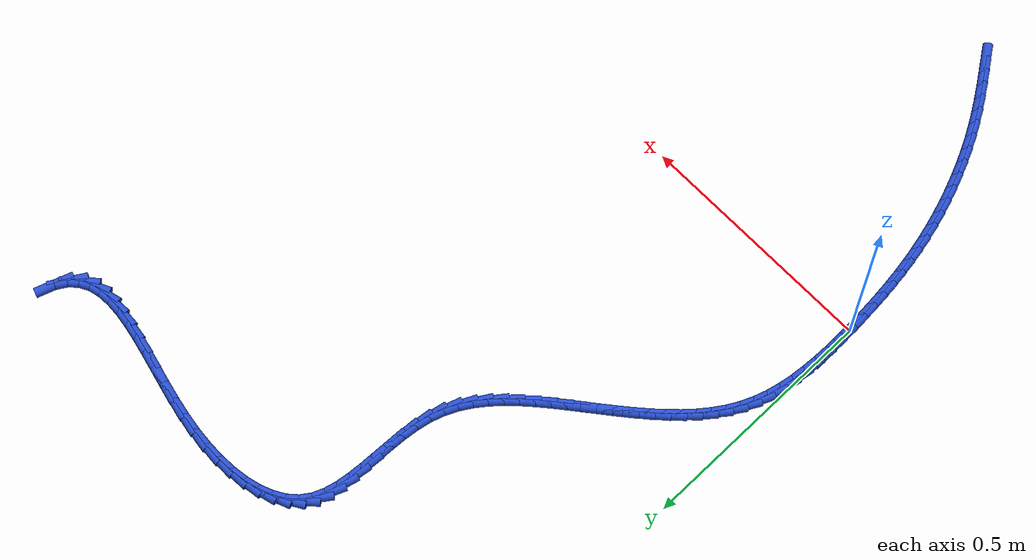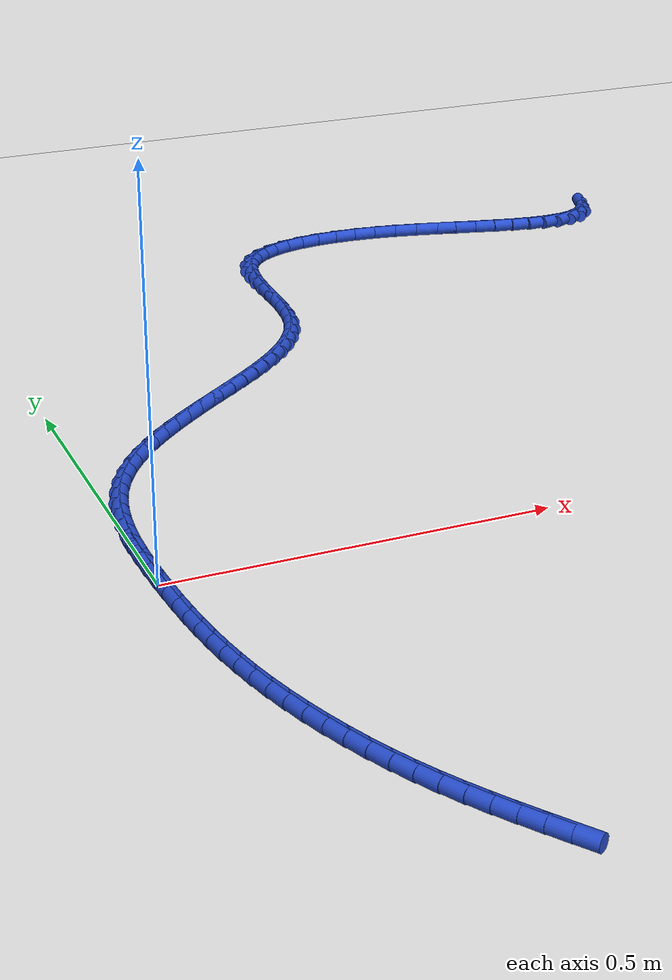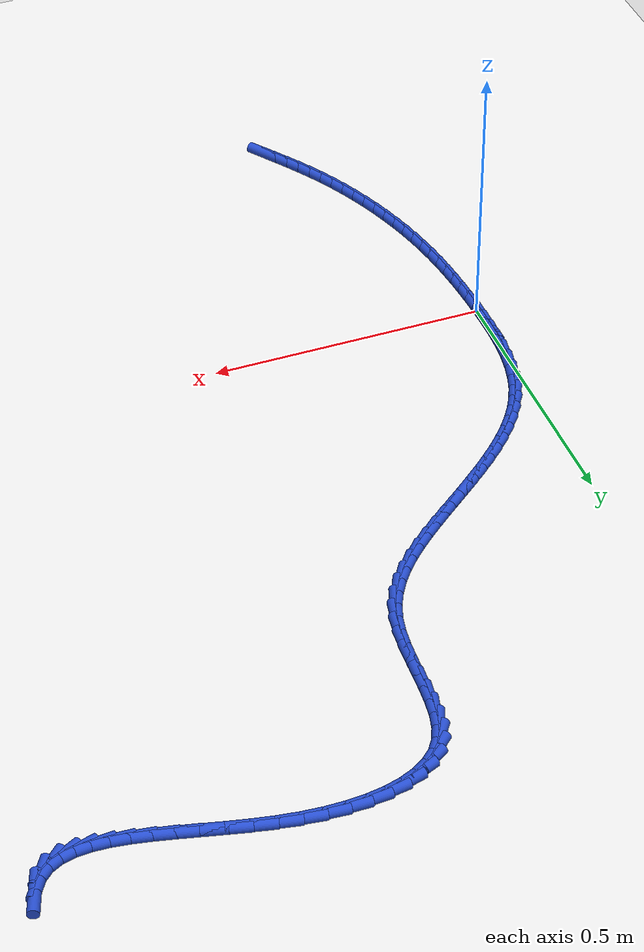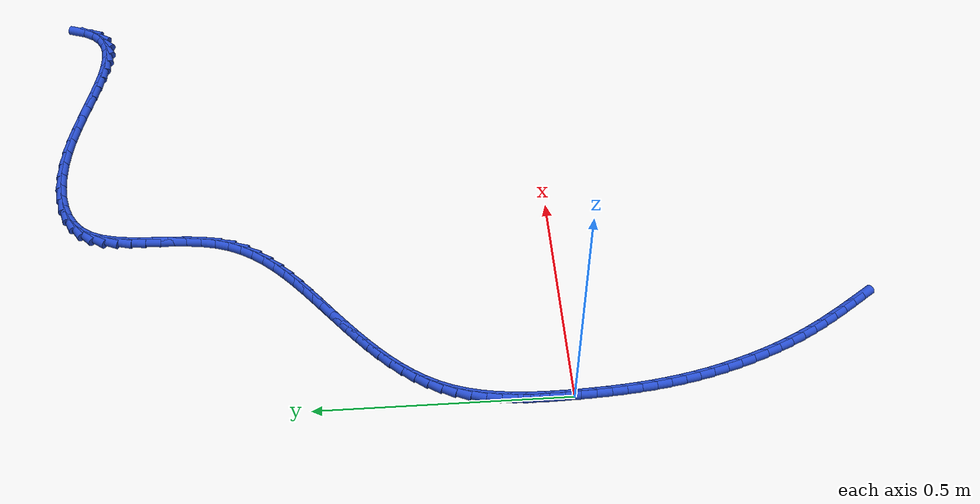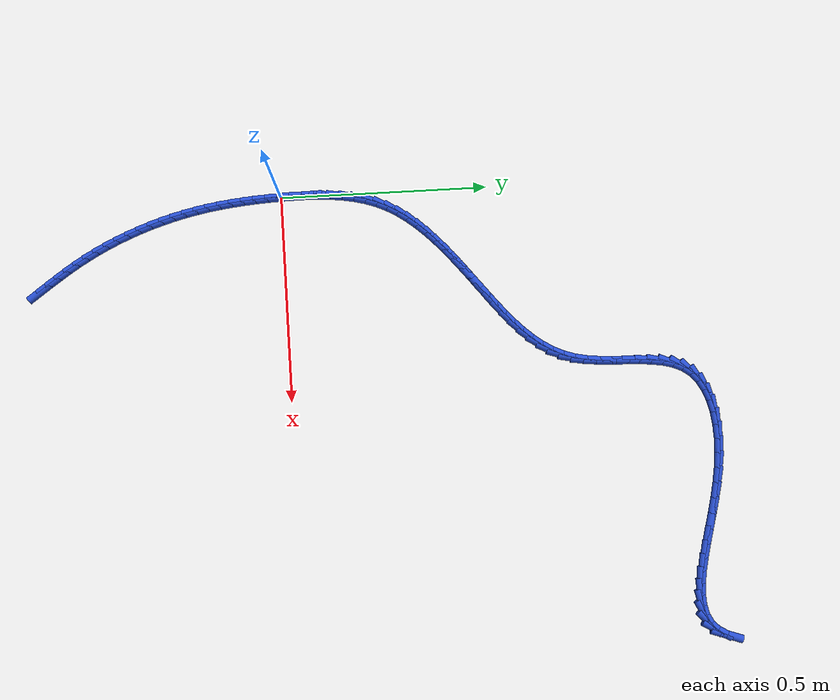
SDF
<sdf version="1.6">
 <world name="default">
  <model name="ground_plane">
   <static>1</static>
   <link name="link">
    <collision name="collision">
     <geometry><plane><normal>0 0 1</normal><size>100 100</size></plane></geometry>
     <surface><friction><ode><mu>100</mu><mu2>50</mu2></ode></friction></surface>
    </collision>
    <visual name="visual">
     <cast_shadows>0</cast_shadows>
     <geometry><plane><normal>0 0 1</normal><size>100 100</size></plane></geometry>
     <material>
      <script><uri>file://media/materials/scripts/gazebo.material</uri><name>Gazebo/WhiteGlow</name></script>
     </material>
    </visual>
   </link>
  </model>
  <model name="line">
   <link name="link_0">
    <pose>-1.1872013788716274e-17 2.0816681711721685e-17 0.01 0 1.57 -1.5451109101170222</pose>
    <collision name="collision">
     <geometry><cylinder><radius>0.01</radius><length>0.08</length></cylinder></geometry>
    </collision>
    <visual name="visual">
     <material>
      <script><name>Gazebo/Blue</name><uri>file://media/materials/scripts/gazebo.material</uri></script>
     </material>
     <geometry><cylinder><radius>0.01</radius><length>0.08</length></cylinder></geometry>
    </visual>
   </link>
   <link name="link_1">
    <pose>-0.0007698900590970052 0.02996722817668123 0.01 0 1.57 -1.5673495071454218</pose>
    <collision name="collision">
     <geometry><cylinder><radius>0.01</radius><length>0.08</length></cylinder></geometry>
    </collision>
    <visual name="visual">
     <material>
      <script><name>Gazebo/Blue</name><uri>file://media/materials/scripts/gazebo.material</uri></script>
     </material>
     <geometry><cylinder><radius>0.01</radius><length>0.08</length></cylinder></geometry>
    </visual>
   </link>
   <link name="link_2">
    <pose>-0.0008736150124650972 0.060060053779899154 0.01 0 1.57 1.5438950808368137</pose>
    <collision name="collision">
     <geometry><cylinder><radius>0.01</radius><length>0.08</length></cylinder></geometry>
    </collision>
    <visual name="visual">
     <material>
      <script><name>Gazebo/Blue</name><uri>file://media/materials/scripts/gazebo.material</uri></script>
     </material>
     <geometry><cylinder><radius>0.01</radius><length>0.08</length></cylinder></geometry>
    </visual>
   </link>
   <link name="link_3">
    <pose>-6.574774106356956e-05 0.09008365881764162 0.01 0 1.57 1.5048666415744176</pose>
    <collision name="collision">
     <geometry><cylinder><radius>0.01</radius><length>0.08</length></cylinder></geometry>
    </collision>
    <visual name="visual">
     <material>
      <script><name>Gazebo/Blue</name><uri>file://media/materials/scripts/gazebo.material</uri></script>
     </material>
     <geometry><cylinder><radius>0.01</radius><length>0.08</length></cylinder></geometry>
    </visual>
   </link>
   <link name="link_4">
    <pose>0.001899138874148295 0.11984322529789647 0.01 0 1.57 1.45637503997327</pose>
    <collision name="collision">
     <geometry><cylinder><radius>0.01</radius><length>0.08</length></cylinder></geometry>
    </collision>
    <visual name="visual">
     <material>
      <script><name>Gazebo/Blue</name><uri>file://media/materials/scripts/gazebo.material</uri></script>
     </material>
     <geometry><cylinder><radius>0.01</radius><length>0.08</length></cylinder></geometry>
    </visual>
   </link>
   <link name="link_5">
    <pose>0.005266471952211213 0.1491439352286515 0.01 0 1.57 1.3974837513793676</pose>
    <collision name="collision">
     <geometry><cylinder><radius>0.01</radius><length>0.08</length></cylinder></geometry>
    </collision>
    <visual name="visual">
     <material>
      <script><name>Gazebo/Blue</name><uri>file://media/materials/scripts/gazebo.material</uri></script>
     </material>
     <geometry><cylinder><radius>0.01</radius><length>0.08</length></cylinder></geometry>
    </visual>
   </link>
   <link name="link_6">
    <pose>0.0102816786121659 0.17779097061789453 0.01 0 1.57 1.3272106321210706</pose>
    <collision name="collision">
     <geometry><cylinder><radius>0.01</radius><length>0.08</length></cylinder></geometry>
    </collision>
    <visual name="visual">
     <material>
      <script><name>Gazebo/Blue</name><uri>file://media/materials/scripts/gazebo.material</uri></script>
     </material>
     <geometry><cylinder><radius>0.01</radius><length>0.08</length></cylinder></geometry>
    </visual>
   </link>
   <link name="link_7">
    <pose>0.01719018597305308 0.20558951347361348 0.01 0 1.57 1.2447186185263812</pose>
    <collision name="collision">
     <geometry><cylinder><radius>0.01</radius><length>0.08</length></cylinder></geometry>
    </collision>
    <visual name="visual">
     <material>
      <script><name>Gazebo/Blue</name><uri>file://media/materials/scripts/gazebo.material</uri></script>
     </material>
     <geometry><cylinder><radius>0.01</radius><length>0.08</length></cylinder></geometry>
    </visual>
   </link>
   <link name="link_8">
    <pose>0.026237421153913462 0.23234474580379605 0.01 0 1.57 1.1509238718050745</pose>
    <collision name="collision">
     <geometry><cylinder><radius>0.01</radius><length>0.08</length></cylinder></geometry>
    </collision>
    <visual name="visual">
     <material>
      <script><name>Gazebo/Blue</name><uri>file://media/materials/scripts/gazebo.material</uri></script>
     </material>
     <geometry><cylinder><radius>0.01</radius><length>0.08</length></cylinder></geometry>
    </visual>
   </link>
   <link name="link_9">
    <pose>0.03763806938680644 0.2578827125401909 0.01 0 1.57 1.0586166648460742</pose>
    <collision name="collision">
     <geometry><cylinder><radius>0.01</radius><length>0.08</length></cylinder></geometry>
    </collision>
    <visual name="visual">
     <material>
      <script><name>Gazebo/Blue</name><uri>file://media/materials/scripts/gazebo.material</uri></script>
     </material>
     <geometry><cylinder><radius>0.01</radius><length>0.08</length></cylinder></geometry>
    </visual>
   </link>
   <link name="link_10">
    <pose>0.051322447408647644 0.2822224447587526 0.01 0 1.57 0.9758450162834615</pose>
    <collision name="collision">
     <geometry><cylinder><radius>0.01</radius><length>0.08</length></cylinder></geometry>
    </collision>
    <visual name="visual">
     <material>
      <script><name>Gazebo/Blue</name><uri>file://media/materials/scripts/gazebo.material</uri></script>
     </material>
     <geometry><cylinder><radius>0.01</radius><length>0.08</length></cylinder></geometry>
    </visual>
   </link>
   <link name="link_11">
    <pose>0.06706701228580245 0.30548739011137616 0.01 0 1.57 0.9035324256831487</pose>
    <collision name="collision">
     <geometry><cylinder><radius>0.01</radius><length>0.08</length></cylinder></geometry>
    </collision>
    <visual name="visual">
     <material>
      <script><name>Gazebo/Blue</name><uri>file://media/materials/scripts/gazebo.material</uri></script>
     </material>
     <geometry><cylinder><radius>0.01</radius><length>0.08</length></cylinder></geometry>
    </visual>
   </link>
   <link name="link_12">
    <pose>0.08464670987519629 0.3278020218294001 0.01 0 1.57 0.841854725073762</pose>
    <collision name="collision">
     <geometry><cylinder><radius>0.01</radius><length>0.08</length></cylinder></geometry>
    </collision>
    <visual name="visual">
     <material>
      <script><name>Gazebo/Blue</name><uri>file://media/materials/scripts/gazebo.material</uri></script>
     </material>
     <geometry><cylinder><radius>0.01</radius><length>0.08</length></cylinder></geometry>
    </visual>
   </link>
   <link name="link_13">
    <pose>0.10383648603375471 0.34929081314416266 0.01 0 1.57 0.7905386433102758</pose>
    <collision name="collision">
     <geometry><cylinder><radius>0.01</radius><length>0.08</length></cylinder></geometry>
    </collision>
    <visual name="visual">
     <material>
      <script><name>Gazebo/Blue</name><uri>file://media/materials/scripts/gazebo.material</uri></script>
     </material>
     <geometry><cylinder><radius>0.01</radius><length>0.08</length></cylinder></geometry>
    </visual>
   </link>
   <link name="link_14">
    <pose>0.12441128661840307 0.37007823728700195 0.01 0 1.57 0.7490753755160869</pose>
    <collision name="collision">
     <geometry><cylinder><radius>0.01</radius><length>0.08</length></cylinder></geometry>
    </collision>
    <visual name="visual">
     <material>
      <script><name>Gazebo/Blue</name><uri>file://media/materials/scripts/gazebo.material</uri></script>
     </material>
     <geometry><cylinder><radius>0.01</radius><length>0.08</length></cylinder></geometry>
    </visual>
   </link>
   <link name="link_15">
    <pose>0.14614605748606693 0.39028876748925656 0.01 0 1.57 0.7168812915747746</pose>
    <collision name="collision">
     <geometry><cylinder><radius>0.01</radius><length>0.08</length></cylinder></geometry>
    </collision>
    <visual name="visual">
     <material>
      <script><name>Gazebo/Blue</name><uri>file://media/materials/scripts/gazebo.material</uri></script>
     </material>
     <geometry><cylinder><radius>0.01</radius><length>0.08</length></cylinder></geometry>
    </visual>
   </link>
   <link name="link_16">
    <pose>0.16881574449367168 0.41004687698226455 0.01 0 1.57 0.6934040923392459</pose>
    <collision name="collision">
     <geometry><cylinder><radius>0.01</radius><length>0.08</length></cylinder></geometry>
    </collision>
    <visual name="visual">
     <material>
      <script><name>Gazebo/Blue</name><uri>file://media/materials/scripts/gazebo.material</uri></script>
     </material>
     <geometry><cylinder><radius>0.01</radius><length>0.08</length></cylinder></geometry>
    </visual>
   </link>
   <link name="link_17">
    <pose>0.1921952934981428 0.42947703899736434 0.01 0 1.57 0.6781859495157794</pose>
    <collision name="collision">
     <geometry><cylinder><radius>0.01</radius><length>0.08</length></cylinder></geometry>
    </collision>
    <visual name="visual">
     <material>
      <script><name>Gazebo/Blue</name><uri>file://media/materials/scripts/gazebo.material</uri></script>
     </material>
     <geometry><cylinder><radius>0.01</radius><length>0.08</length></cylinder></geometry>
    </visual>
   </link>
   <link name="link_18">
    <pose>0.21605965035640579 0.44870372676589415 0.01 0 1.57 0.6708973248589045</pose>
    <collision name="collision">
     <geometry><cylinder><radius>0.01</radius><length>0.08</length></cylinder></geometry>
    </collision>
    <visual name="visual">
     <material>
      <script><name>Gazebo/Blue</name><uri>file://media/materials/scripts/gazebo.material</uri></script>
     </material>
     <geometry><cylinder><radius>0.01</radius><length>0.08</length></cylinder></geometry>
    </visual>
   </link>
   <link name="link_19">
    <pose>0.24018376092538607 0.4678514135191925 0.01 0 1.57 0.6713525008368391</pose>
    <collision name="collision">
     <geometry><cylinder><radius>0.01</radius><length>0.08</length></cylinder></geometry>
    </collision>
    <visual name="visual">
     <material>
      <script><name>Gazebo/Blue</name><uri>file://media/materials/scripts/gazebo.material</uri></script>
     </material>
     <geometry><cylinder><radius>0.01</radius><length>0.08</length></cylinder></geometry>
    </visual>
   </link>
   <link name="link_20">
    <pose>0.26434257106200904 0.4870445724885972 0.01 0 1.57 0.6798132465846809</pose>
    <collision name="collision">
     <geometry><cylinder><radius>0.01</radius><length>0.08</length></cylinder></geometry>
    </collision>
    <visual name="visual">
     <material>
      <script><name>Gazebo/Blue</name><uri>file://media/materials/scripts/gazebo.material</uri></script>
     </material>
     <geometry><cylinder><radius>0.01</radius><length>0.08</length></cylinder></geometry>
    </visual>
   </link>
   <link name="link_21">
    <pose>0.28830198507840205 0.5064122257639235 0.01 0 1.57 0.6994442417516715</pose>
    <collision name="collision">
     <geometry><cylinder><radius>0.01</radius><length>0.08</length></cylinder></geometry>
    </collision>
    <visual name="visual">
     <material>
      <script><name>Gazebo/Blue</name><uri>file://media/materials/scripts/gazebo.material</uri></script>
     </material>
     <geometry><cylinder><radius>0.01</radius><length>0.08</length></cylinder></geometry>
    </visual>
   </link>
   <link name="link_22">
    <pose>0.31173708832156377 0.5261290870317821 0.01 0 1.57 0.7324984477223815</pose>
    <collision name="collision">
     <geometry><cylinder><radius>0.01</radius><length>0.08</length></cylinder></geometry>
    </collision>
    <visual name="visual">
     <material>
      <script><name>Gazebo/Blue</name><uri>file://media/materials/scripts/gazebo.material</uri></script>
     </material>
     <geometry><cylinder><radius>0.01</radius><length>0.08</length></cylinder></geometry>
    </visual>
   </link>
   <link name="link_23">
    <pose>0.3342705140392098 0.5463962589622757 0.01 0 1.57 0.7798428348184872</pose>
    <collision name="collision">
     <geometry><cylinder><radius>0.01</radius><length>0.08</length></cylinder></geometry>
    </collision>
    <visual name="visual">
     <material>
      <script><name>Gazebo/Blue</name><uri>file://media/materials/scripts/gazebo.material</uri></script>
     </material>
     <geometry><cylinder><radius>0.01</radius><length>0.08</length></cylinder></geometry>
    </visual>
   </link>
   <link name="link_24">
    <pose>0.3555242599318217 0.5674151639733479 0.01 0 1.57 0.8424951398362368</pose>
    <collision name="collision">
     <geometry><cylinder><radius>0.01</radius><length>0.08</length></cylinder></geometry>
    </collision>
    <visual name="visual">
     <material>
      <script><name>Gazebo/Blue</name><uri>file://media/materials/scripts/gazebo.material</uri></script>
     </material>
     <geometry><cylinder><radius>0.01</radius><length>0.08</length></cylinder></geometry>
    </visual>
   </link>
   <link name="link_25">
    <pose>0.37512032369988113 0.5893872244829423 0.01 0 1.57 0.921360885873998</pose>
    <collision name="collision">
     <geometry><cylinder><radius>0.01</radius><length>0.08</length></cylinder></geometry>
    </collision>
    <visual name="visual">
     <material>
      <script><name>Gazebo/Blue</name><uri>file://media/materials/scripts/gazebo.material</uri></script>
     </material>
     <geometry><cylinder><radius>0.01</radius><length>0.08</length></cylinder></geometry>
    </visual>
   </link>
   <link name="link_26">
    <pose>0.3926807030438695 0.6125138629090023 0.01 0 1.57 1.0167613303036338</pose>
    <collision name="collision">
     <geometry><cylinder><radius>0.01</radius><length>0.08</length></cylinder></geometry>
    </collision>
    <visual name="visual">
     <material>
      <script><name>Gazebo/Blue</name><uri>file://media/materials/scripts/gazebo.material</uri></script>
     </material>
     <geometry><cylinder><radius>0.01</radius><length>0.08</length></cylinder></geometry>
    </visual>
   </link>
   <link name="link_27">
    <pose>0.4078273956642686 0.6369965016694712 0.01 0 1.57 1.127787545279394</pose>
    <collision name="collision">
     <geometry><cylinder><radius>0.01</radius><length>0.08</length></cylinder></geometry>
    </collision>
    <visual name="visual">
     <material>
      <script><name>Gazebo/Blue</name><uri>file://media/materials/scripts/gazebo.material</uri></script>
     </material>
     <geometry><cylinder><radius>0.01</radius><length>0.08</length></cylinder></geometry>
    </visual>
   </link>
   <link name="link_28">
    <pose>0.4201823992615598 0.6630365631822922 0.01 0 1.57 1.2515728648714242</pose>
    <collision name="collision">
     <geometry><cylinder><radius>0.01</radius><length>0.08</length></cylinder></geometry>
    </collision>
    <visual name="visual">
     <material>
      <script><name>Gazebo/Blue</name><uri>file://media/materials/scripts/gazebo.material</uri></script>
     </material>
     <geometry><cylinder><radius>0.01</radius><length>0.08</length></cylinder></geometry>
    </visual>
   </link>
   <link name="link_29">
    <pose>0.42937019553111067 0.6908339102998016 0.01 0 1.57 1.3698600469503874</pose>
    <collision name="collision">
     <geometry><cylinder><radius>0.01</radius><length>0.08</length></cylinder></geometry>
    </collision>
    <visual name="visual">
     <material>
      <script><name>Gazebo/Blue</name><uri>file://media/materials/scripts/gazebo.material</uri></script>
     </material>
     <geometry><cylinder><radius>0.01</radius><length>0.08</length></cylinder></geometry>
    </visual>
   </link>
   <link name="link_30">
    <pose>0.4353836315976691 0.7203571292086329 0.01 0 1.57 1.4546445446378071</pose>
    <collision name="collision">
     <geometry><cylinder><radius>0.01</radius><length>0.08</length></cylinder></geometry>
    </collision>
    <visual name="visual">
     <material>
      <script><name>Gazebo/Blue</name><uri>file://media/materials/scripts/gazebo.material</uri></script>
     </material>
     <geometry><cylinder><radius>0.01</radius><length>0.08</length></cylinder></geometry>
    </visual>
   </link>
   <link name="link_31">
    <pose>0.43897069717066817 0.7511006930403253 0.01 0 1.57 1.5071485653790522</pose>
    <collision name="collision">
     <geometry><cylinder><radius>0.01</radius><length>0.08</length></cylinder></geometry>
    </collision>
    <visual name="visual">
     <material>
      <script><name>Gazebo/Blue</name><uri>file://media/materials/scripts/gazebo.material</uri></script>
     </material>
     <geometry><cylinder><radius>0.01</radius><length>0.08</length></cylinder></geometry>
    </visual>
   </link>
   <link name="link_32">
    <pose>0.440971956508509 0.7825009523901908 0.01 0 1.57 1.5309354088474274</pose>
    <collision name="collision">
     <geometry><cylinder><radius>0.01</radius><length>0.08</length></cylinder></geometry>
    </collision>
    <visual name="visual">
     <material>
      <script><name>Gazebo/Blue</name><uri>file://media/materials/scripts/gazebo.material</uri></script>
     </material>
     <geometry><cylinder><radius>0.01</radius><length>0.08</length></cylinder></geometry>
    </visual>
   </link>
   <link name="link_33">
    <pose>0.4422279738695924 0.8139942578535415 0.01 0 1.57 1.5272641448382829</pose>
    <collision name="collision">
     <geometry><cylinder><radius>0.01</radius><length>0.08</length></cylinder></geometry>
    </collision>
    <visual name="visual">
     <material>
      <script><name>Gazebo/Blue</name><uri>file://media/materials/scripts/gazebo.material</uri></script>
     </material>
     <geometry><cylinder><radius>0.01</radius><length>0.08</length></cylinder></geometry>
    </visual>
   </link>
   <link name="link_34">
    <pose>0.4435793135123191 0.8450169600256893 0.01 0 1.57 1.4946734663981884</pose>
    <collision name="collision">
     <geometry><cylinder><radius>0.01</radius><length>0.08</length></cylinder></geometry>
    </collision>
    <visual name="visual">
     <material>
      <script><name>Gazebo/Blue</name><uri>file://media/materials/scripts/gazebo.material</uri></script>
     </material>
     <geometry><cylinder><radius>0.01</radius><length>0.08</length></cylinder></geometry>
    </visual>
   </link>
   <link name="link_35">
    <pose>0.44586653969509 0.8750054095019463 0.01 0 1.57 1.4286271214535384</pose>
    <collision name="collision">
     <geometry><cylinder><radius>0.01</radius><length>0.08</length></cylinder></geometry>
    </collision>
    <visual name="visual">
     <material>
      <script><name>Gazebo/Blue</name><uri>file://media/materials/scripts/gazebo.material</uri></script>
     </material>
     <geometry><cylinder><radius>0.01</radius><length>0.08</length></cylinder></geometry>
    </visual>
   </link>
   <link name="link_36">
    <pose>0.4499302166763056 0.9033959568776234 0.01 0 1.57 1.3213930779234753</pose>
    <collision name="collision">
     <geometry><cylinder><radius>0.01</radius><length>0.08</length></cylinder></geometry>
    </collision>
    <visual name="visual">
     <material>
      <script><name>Gazebo/Blue</name><uri>file://media/materials/scripts/gazebo.material</uri></script>
     </material>
     <geometry><cylinder><radius>0.01</radius><length>0.08</length></cylinder></geometry>
    </visual>
   </link>
   <link name="link_37">
    <pose>0.45661090871436694 0.9296249527480335 0.01 0 1.57 1.1635627403228734</pose>
    <collision name="collision">
     <geometry><cylinder><radius>0.01</radius><length>0.08</length></cylinder></geometry>
    </collision>
    <visual name="visual">
     <material>
      <script><name>Gazebo/Blue</name><uri>file://media/materials/scripts/gazebo.material</uri></script>
     </material>
     <geometry><cylinder><radius>0.01</radius><length>0.08</length></cylinder></geometry>
    </visual>
   </link>
   <link name="link_38">
    <pose>0.46674918006767485 0.9531287477084887 0.01 0 1.57 0.9526135646859881</pose>
    <collision name="collision">
     <geometry><cylinder><radius>0.01</radius><length>0.08</length></cylinder></geometry>
    </collision>
    <visual name="visual">
     <material>
      <script><name>Gazebo/Blue</name><uri>file://media/materials/scripts/gazebo.material</uri></script>
     </material>
     <geometry><cylinder><radius>0.01</radius><length>0.08</length></cylinder></geometry>
    </visual>
   </link>
   <link name="link_39">
    <pose>0.4811420381584736 0.9733670530089876 0.01 0 1.57 0.7309356425136097</pose>
    <collision name="collision">
     <geometry><cylinder><radius>0.01</radius><length>0.08</length></cylinder></geometry>
    </collision>
    <visual name="visual">
     <material>
      <script><name>Gazebo/Blue</name><uri>file://media/materials/scripts/gazebo.material</uri></script>
     </material>
     <geometry><cylinder><radius>0.01</radius><length>0.08</length></cylinder></geometry>
    </visual>
   </link>
   <link name="link_40">
    <pose>0.49988761090628964 0.9901744070029517 0.01 0 1.57 0.5382414222113716</pose>
    <collision name="collision">
     <geometry><cylinder><radius>0.01</radius><length>0.08</length></cylinder></geometry>
    </collision>
    <visual name="visual">
     <material>
      <script><name>Gazebo/Blue</name><uri>file://media/materials/scripts/gazebo.material</uri></script>
     </material>
     <geometry><cylinder><radius>0.01</radius><length>0.08</length></cylinder></geometry>
    </visual>
   </link>
   <link name="link_41">
    <pose>0.5225208499953237 1.0036873939847466 0.01 0 1.57 0.3787790663361529</pose>
    <collision name="collision">
     <geometry><cylinder><radius>0.01</radius><length>0.08</length></cylinder></geometry>
    </collision>
    <visual name="visual">
     <material>
      <script><name>Gazebo/Blue</name><uri>file://media/materials/scripts/gazebo.material</uri></script>
     </material>
     <geometry><cylinder><radius>0.01</radius><length>0.08</length></cylinder></geometry>
    </visual>
   </link>
   <link name="link_42">
    <pose>0.5485606880715946 1.0140511896720912 0.01 0 1.57 0.24882336007840214</pose>
    <collision name="collision">
     <geometry><cylinder><radius>0.01</radius><length>0.08</length></cylinder></geometry>
    </collision>
    <visual name="visual">
     <material>
      <script><name>Gazebo/Blue</name><uri>file://media/materials/scripts/gazebo.material</uri></script>
     </material>
     <geometry><cylinder><radius>0.01</radius><length>0.08</length></cylinder></geometry>
    </visual>
   </link>
   <link name="link_43">
    <pose>0.5775260577811204 1.0214109697827043 0.01 0 1.57 0.14232825245619285</pose>
    <collision name="collision">
     <geometry><cylinder><radius>0.01</radius><length>0.08</length></cylinder></geometry>
    </collision>
    <visual name="visual">
     <material>
      <script><name>Gazebo/Blue</name><uri>file://media/materials/scripts/gazebo.material</uri></script>
     </material>
     <geometry><cylinder><radius>0.01</radius><length>0.08</length></cylinder></geometry>
    </visual>
   </link>
   <link name="link_44">
    <pose>0.6089358917699195 1.0259119100343048 0.01 0 1.57 0.0535030720630858</pose>
    <collision name="collision">
     <geometry><cylinder><radius>0.01</radius><length>0.08</length></cylinder></geometry>
    </collision>
    <visual name="visual">
     <material>
      <script><name>Gazebo/Blue</name><uri>file://media/materials/scripts/gazebo.material</uri></script>
     </material>
     <geometry><cylinder><radius>0.01</radius><length>0.08</length></cylinder></geometry>
    </visual>
   </link>
   <link name="link_45">
    <pose>0.6423091226840105 1.0276991861446123 0.01 0 1.57 -0.02240909431755699</pose>
    <collision name="collision">
     <geometry><cylinder><radius>0.01</radius><length>0.08</length></cylinder></geometry>
    </collision>
    <visual name="visual">
     <material>
      <script><name>Gazebo/Blue</name><uri>file://media/materials/scripts/gazebo.material</uri></script>
     </material>
     <geometry><cylinder><radius>0.01</radius><length>0.08</length></cylinder></geometry>
    </visual>
   </link>
   <link name="link_46">
    <pose>0.677164683169412 1.0269179738313454 0.01 0 1.57 -0.08913322253763291</pose>
    <collision name="collision">
     <geometry><cylinder><radius>0.01</radius><length>0.08</length></cylinder></geometry>
    </collision>
    <visual name="visual">
     <material>
      <script><name>Gazebo/Blue</name><uri>file://media/materials/scripts/gazebo.material</uri></script>
     </material>
     <geometry><cylinder><radius>0.01</radius><length>0.08</length></cylinder></geometry>
    </visual>
   </link>
   <link name="link_47">
    <pose>0.7130215058721426 1.023713448812224 0.01 0 1.57 -0.14889320953594515</pose>
    <collision name="collision">
     <geometry><cylinder><radius>0.01</radius><length>0.08</length></cylinder></geometry>
    </collision>
    <visual name="visual">
     <material>
      <script><name>Gazebo/Blue</name><uri>file://media/materials/scripts/gazebo.material</uri></script>
     </material>
     <geometry><cylinder><radius>0.01</radius><length>0.08</length></cylinder></geometry>
    </visual>
   </link>
   <link name="link_48">
    <pose>0.7494063517024228 1.018255600582526 0.01 0 1.57 -0.19597598391370843</pose>
    <collision name="collision">
     <geometry><cylinder><radius>0.01</radius><length>0.08</length></cylinder></geometry>
    </collision>
    <visual name="visual">
     <material>
      <script><name>Gazebo/Blue</name><uri>file://media/materials/scripts/gazebo.material</uri></script>
     </material>
     <geometry><cylinder><radius>0.01</radius><length>0.08</length></cylinder></geometry>
    </visual>
   </link>
   <link name="link_49">
    <pose>0.7859371371921492 1.0110033607658349 0.01 0 1.57 -0.22710652442872728</pose>
    <collision name="collision">
     <geometry><cylinder><radius>0.01</radius><length>0.08</length></cylinder></geometry>
    </collision>
    <visual name="visual">
     <material>
      <script><name>Gazebo/Blue</name><uri>file://media/materials/scripts/gazebo.material</uri></script>
     </material>
     <geometry><cylinder><radius>0.01</radius><length>0.08</length></cylinder></geometry>
    </visual>
   </link>
   <link name="link_50">
    <pose>0.8222906612316994 1.002602304372791 0.01 0 1.57 -0.24334169820185125</pose>
    <collision name="collision">
     <geometry><cylinder><radius>0.01</radius><length>0.08</length></cylinder></geometry>
    </collision>
    <visual name="visual">
     <material>
      <script><name>Gazebo/Blue</name><uri>file://media/materials/scripts/gazebo.material</uri></script>
     </material>
     <geometry><cylinder><radius>0.01</radius><length>0.08</length></cylinder></geometry>
    </visual>
   </link>
   <link name="link_51">
    <pose>0.8581447073365691 0.9937011274467502 0.01 0 1.57 -0.24483125765413086</pose>
    <collision name="collision">
     <geometry><cylinder><radius>0.01</radius><length>0.08</length></cylinder></geometry>
    </collision>
    <visual name="visual">
     <material>
      <script><name>Gazebo/Blue</name><uri>file://media/materials/scripts/gazebo.material</uri></script>
     </material>
     <geometry><cylinder><radius>0.01</radius><length>0.08</length></cylinder></geometry>
    </visual>
   </link>
   <link name="link_52">
    <pose>0.8931770590222533 0.9849485260310674 0.01 0 1.57 -0.23057554519354578</pose>
    <collision name="collision">
     <geometry><cylinder><radius>0.01</radius><length>0.08</length></cylinder></geometry>
    </collision>
    <visual name="visual">
     <material>
      <script><name>Gazebo/Blue</name><uri>file://media/materials/scripts/gazebo.material</uri></script>
     </material>
     <geometry><cylinder><radius>0.01</radius><length>0.08</length></cylinder></geometry>
    </visual>
   </link>
   <link name="link_53">
    <pose>0.927065499804249 0.9769931961690989 0.01 0 1.57 -0.19813388995301978</pose>
    <collision name="collision">
     <geometry><cylinder><radius>0.01</radius><length>0.08</length></cylinder></geometry>
    </collision>
    <visual name="visual">
     <material>
      <script><name>Gazebo/Blue</name><uri>file://media/materials/scripts/gazebo.material</uri></script>
     </material>
     <geometry><cylinder><radius>0.01</radius><length>0.08</length></cylinder></geometry>
    </visual>
   </link>
   <link name="link_54">
    <pose>0.9594878131980513 0.9704838339041993 0.01 0 1.57 -0.14312583075689134</pose>
    <collision name="collision">
     <geometry><cylinder><radius>0.01</radius><length>0.08</length></cylinder></geometry>
    </collision>
    <visual name="visual">
     <material>
      <script><name>Gazebo/Blue</name><uri>file://media/materials/scripts/gazebo.material</uri></script>
     </material>
     <geometry><cylinder><radius>0.01</radius><length>0.08</length></cylinder></geometry>
    </visual>
   </link>
   <link name="link_55">
    <pose>0.9901217827191567 0.966069135279725 0.01 0 1.57 -0.05852842001810809</pose>
    <collision name="collision">
     <geometry><cylinder><radius>0.01</radius><length>0.08</length></cylinder></geometry>
    </collision>
    <visual name="visual">
     <material>
      <script><name>Gazebo/Blue</name><uri>file://media/materials/scripts/gazebo.material</uri></script>
     </material>
     <geometry><cylinder><radius>0.01</radius><length>0.08</length></cylinder></geometry>
    </visual>
   </link>
   <link name="link_56">
    <pose>1.0186451918830601 0.964397796339031 0.01 0 1.57 0.06585614501446807</pose>
    <collision name="collision">
     <geometry><cylinder><radius>0.01</radius><length>0.08</length></cylinder></geometry>
    </collision>
    <visual name="visual">
     <material>
      <script><name>Gazebo/Blue</name><uri>file://media/materials/scripts/gazebo.material</uri></script>
     </material>
     <geometry><cylinder><radius>0.01</radius><length>0.08</length></cylinder></geometry>
    </visual>
   </link>
   <link name="link_57">
    <pose>1.0447358242052582 0.966118513125473 0.01 0 1.57 0.24205482684594376</pose>
    <collision name="collision">
     <geometry><cylinder><radius>0.01</radius><length>0.08</length></cylinder></geometry>
    </collision>
    <visual name="visual">
     <material>
      <script><name>Gazebo/Blue</name><uri>file://media/materials/scripts/gazebo.material</uri></script>
     </material>
     <geometry><cylinder><radius>0.01</radius><length>0.08</length></cylinder></geometry>
    </visual>
   </link>
   <link name="link_58">
    <pose>1.0680714632012465 0.9718799816824066 0.01 0 1.57 0.4762706710339979</pose>
    <collision name="collision">
     <geometry><cylinder><radius>0.01</radius><length>0.08</length></cylinder></geometry>
    </collision>
    <visual name="visual">
     <material>
      <script><name>Gazebo/Blue</name><uri>file://media/materials/scripts/gazebo.material</uri></script>
     </material>
     <geometry><cylinder><radius>0.01</radius><length>0.08</length></cylinder></geometry>
    </visual>
   </link>
   <link name="link_59">
    <pose>1.0883298923865208 0.9823308980531876 0.01 0 1.57 0.7526378779338351</pose>
    <collision name="collision">
     <geometry><cylinder><radius>0.01</radius><length>0.08</length></cylinder></geometry>
    </collision>
    <visual name="visual">
     <material>
      <script><name>Gazebo/Blue</name><uri>file://media/materials/scripts/gazebo.material</uri></script>
     </material>
     <geometry><cylinder><radius>0.01</radius><length>0.08</length></cylinder></geometry>
    </visual>
   </link>
   <link name="link_60">
    <pose>1.105188895276577 0.9981199582811707 0.01 0 1.57 1.0275307649152405</pose>
    <collision name="collision">
     <geometry><cylinder><radius>0.01</radius><length>0.08</length></cylinder></geometry>
    </collision>
    <visual name="visual">
     <material>
      <script><name>Gazebo/Blue</name><uri>file://media/materials/scripts/gazebo.material</uri></script>
     </material>
     <geometry><cylinder><radius>0.01</radius><length>0.08</length></cylinder></geometry>
    </visual>
   </link>
   <link name="link_61">
    <pose>1.118331832248215 1.019884209910793 0.01 0 1.57 1.2358446032262782</pose>
    <collision name="collision">
     <geometry><cylinder><radius>0.01</radius><length>0.08</length></cylinder></geometry>
    </collision>
    <visual name="visual">
     <material>
      <script><name>Gazebo/Blue</name><uri>file://media/materials/scripts/gazebo.material</uri></script>
     </material>
     <geometry><cylinder><radius>0.01</radius><length>0.08</length></cylinder></geometry>
    </visual>
   </link>
   <link name="link_238">
    <pose>0.19582120491027266 -0.5920673839120661 0.01 0 1.57 -0.9623430445203168</pose>
    <collision name="collision">
     <geometry><cylinder><radius>0.01</radius><length>0.08</length></cylinder></geometry>
    </collision>
    <visual name="visual">
     <material>
      <script><name>Gazebo/Blue</name><uri>file://media/materials/scripts/gazebo.material</uri></script>
     </material>
     <geometry><cylinder><radius>0.01</radius><length>0.08</length></cylinder></geometry>
    </visual>
   </link>
   <link name="link_239">
    <pose>0.1800968787149446 -0.5694950388147176 0.01 0 1.57 -0.9737396659355048</pose>
    <collision name="collision">
     <geometry><cylinder><radius>0.01</radius><length>0.08</length></cylinder></geometry>
    </collision>
    <visual name="visual">
     <material>
      <script><name>Gazebo/Blue</name><uri>file://media/materials/scripts/gazebo.material</uri></script>
     </material>
     <geometry><cylinder><radius>0.01</radius><length>0.08</length></cylinder></geometry>
    </visual>
   </link>
   <link name="link_240">
    <pose>0.16465509718313454 -0.5467806752662879 0.01 0 1.57 -0.9909896297377444</pose>
    <collision name="collision">
     <geometry><cylinder><radius>0.01</radius><length>0.08</length></cylinder></geometry>
    </collision>
    <visual name="visual">
     <material>
      <script><name>Gazebo/Blue</name><uri>file://media/materials/scripts/gazebo.material</uri></script>
     </material>
     <geometry><cylinder><radius>0.01</radius><length>0.08</length></cylinder></geometry>
    </visual>
   </link>
   <link name="link_241">
    <pose>0.14958048907483387 -0.5237622182404242 0.01 0 1.57 -1.013885497927441</pose>
    <collision name="collision">
     <geometry><cylinder><radius>0.01</radius><length>0.08</length></cylinder></geometry>
    </collision>
    <visual name="visual">
     <material>
      <script><name>Gazebo/Blue</name><uri>file://media/materials/scripts/gazebo.material</uri></script>
     </material>
     <geometry><cylinder><radius>0.01</radius><length>0.08</length></cylinder></geometry>
    </visual>
   </link>
   <link name="link_242">
    <pose>0.13495768315003412 -0.5002775927107744 0.01 0 1.57 -1.0420867177201227</pose>
    <collision name="collision">
     <geometry><cylinder><radius>0.01</radius><length>0.08</length></cylinder></geometry>
    </collision>
    <visual name="visual">
     <material>
      <script><name>Gazebo/Blue</name><uri>file://media/materials/scripts/gazebo.material</uri></script>
     </material>
     <geometry><cylinder><radius>0.01</radius><length>0.08</length></cylinder></geometry>
    </visual>
   </link>
   <link name="link_243">
    <pose>0.12087130816872661 -0.47616472365098605 0.01 0 1.57 -1.074963629406272</pose>
    <collision name="collision">
     <geometry><cylinder><radius>0.01</radius><length>0.08</length></cylinder></geometry>
    </collision>
    <visual name="visual">
     <material>
      <script><name>Gazebo/Blue</name><uri>file://media/materials/scripts/gazebo.material</uri></script>
     </material>
     <geometry><cylinder><radius>0.01</radius><length>0.08</length></cylinder></geometry>
    </visual>
   </link>
   <link name="link_244">
    <pose>0.10740477413560802 -0.45126836358181144 0.01 0 1.57 -1.1091385631461514</pose>
    <collision name="collision">
     <geometry><cylinder><radius>0.01</radius><length>0.08</length></cylinder></geometry>
    </collision>
    <visual name="visual">
     <material>
      <script><name>Gazebo/Blue</name><uri>file://media/materials/scripts/gazebo.material</uri></script>
     </material>
     <geometry><cylinder><radius>0.01</radius><length>0.08</length></cylinder></geometry>
    </visual>
   </link>
   <link name="link_245">
    <pose>0.0946177077194417 -0.4255665008319583 0.01 0 1.57 -1.1421025598399244</pose>
    <collision name="collision">
     <geometry><cylinder><radius>0.01</radius><length>0.08</length></cylinder></geometry>
    </collision>
    <visual name="visual">
     <material>
      <script><name>Gazebo/Blue</name><uri>file://media/materials/scripts/gazebo.material</uri></script>
     </material>
     <geometry><cylinder><radius>0.01</radius><length>0.08</length></cylinder></geometry>
    </visual>
   </link>
   <link name="link_246">
    <pose>0.08254809721569074 -0.39915834331673183 0.01 0 1.57 -1.1740999943670694</pose>
    <collision name="collision">
     <geometry><cylinder><radius>0.01</radius><length>0.08</length></cylinder></geometry>
    </collision>
    <visual name="visual">
     <material>
      <script><name>Gazebo/Blue</name><uri>file://media/materials/scripts/gazebo.material</uri></script>
     </material>
     <geometry><cylinder><radius>0.01</radius><length>0.08</length></cylinder></geometry>
    </visual>
   </link>
   <link name="link_247">
    <pose>0.0712331423587802 -0.3721475165220893 0.01 0 1.57 -1.2054483801619715</pose>
    <collision name="collision">
     <geometry><cylinder><radius>0.01</radius><length>0.08</length></cylinder></geometry>
    </collision>
    <visual name="visual">
     <material>
      <script><name>Gazebo/Blue</name><uri>file://media/materials/scripts/gazebo.material</uri></script>
     </material>
     <geometry><cylinder><radius>0.01</radius><length>0.08</length></cylinder></geometry>
    </visual>
   </link>
   <link name="link_248">
    <pose>0.06071004288313546 -0.3446376459339892 0.01 0 1.57 -1.2364477310214768</pose>
    <collision name="collision">
     <geometry><cylinder><radius>0.01</radius><length>0.08</length></cylinder></geometry>
    </collision>
    <visual name="visual">
     <material>
      <script><name>Gazebo/Blue</name><uri>file://media/materials/scripts/gazebo.material</uri></script>
     </material>
     <geometry><cylinder><radius>0.01</radius><length>0.08</length></cylinder></geometry>
    </visual>
   </link>
   <link name="link_249">
    <pose>0.0510159985231819 -0.3167323570383892 0.01 0 1.57 -1.2673880834925233</pose>
    <collision name="collision">
     <geometry><cylinder><radius>0.01</radius><length>0.08</length></cylinder></geometry>
    </collision>
    <visual name="visual">
     <material>
      <script><name>Gazebo/Blue</name><uri>file://media/materials/scripts/gazebo.material</uri></script>
     </material>
     <geometry><cylinder><radius>0.01</radius><length>0.08</length></cylinder></geometry>
    </visual>
   </link>
   <link name="link_250">
    <pose>0.042188209013344954 -0.2885352753212479 0.01 0 1.57 -1.298556632873995</pose>
    <collision name="collision">
     <geometry><cylinder><radius>0.01</radius><length>0.08</length></cylinder></geometry>
    </collision>
    <visual name="visual">
     <material>
      <script><name>Gazebo/Blue</name><uri>file://media/materials/scripts/gazebo.material</uri></script>
     </material>
     <geometry><cylinder><radius>0.01</radius><length>0.08</length></cylinder></geometry>
    </visual>
   </link>
   <link name="link_251">
    <pose>0.03426387408804998 -0.2601500262685231 0.01 0 1.57 -1.3302373947872996</pose>
    <collision name="collision">
     <geometry><cylinder><radius>0.01</radius><length>0.08</length></cylinder></geometry>
    </collision>
    <visual name="visual">
     <material>
      <script><name>Gazebo/Blue</name><uri>file://media/materials/scripts/gazebo.material</uri></script>
     </material>
     <geometry><cylinder><radius>0.01</radius><length>0.08</length></cylinder></geometry>
    </visual>
   </link>
   <link name="link_252">
    <pose>0.027279861436735352 -0.2316797814183367 0.01 0 1.57 -1.3619232228963538</pose>
    <collision name="collision">
     <geometry><cylinder><radius>0.01</radius><length>0.08</length></cylinder></geometry>
    </collision>
    <visual name="visual">
     <material>
      <script><name>Gazebo/Blue</name><uri>file://media/materials/scripts/gazebo.material</uri></script>
     </material>
     <geometry><cylinder><radius>0.01</radius><length>0.08</length></cylinder></geometry>
    </visual>
   </link>
   <link name="link_253">
    <pose>0.021239232493444348 -0.2031814948470862 0.01 0 1.57 -1.3921334817907711</pose>
    <collision name="collision">
     <geometry><cylinder><radius>0.01</radius><length>0.08</length></cylinder></geometry>
    </collision>
    <visual name="visual">
     <material>
      <script><name>Gazebo/Blue</name><uri>file://media/materials/scripts/gazebo.material</uri></script>
     </material>
     <geometry><cylinder><radius>0.01</radius><length>0.08</length></cylinder></geometry>
    </visual>
   </link>
   <link name="link_254">
    <pose>0.0160825668609577 -0.17462670000083874 0.01 0 1.57 -1.420489077079173</pose>
    <collision name="collision">
     <geometry><cylinder><radius>0.01</radius><length>0.08</length></cylinder></geometry>
    </collision>
    <visual name="visual">
     <material>
      <script><name>Gazebo/Blue</name><uri>file://media/materials/scripts/gazebo.material</uri></script>
     </material>
     <geometry><cylinder><radius>0.01</radius><length>0.08</length></cylinder></geometry>
    </visual>
   </link>
   <link name="link_255">
    <pose>0.011743689492973107 -0.14597769585908674 0.01 0 1.57 -1.446795434092657</pose>
    <collision name="collision">
     <geometry><cylinder><radius>0.01</radius><length>0.08</length></cylinder></geometry>
    </collision>
    <visual name="visual">
     <material>
      <script><name>Gazebo/Blue</name><uri>file://media/materials/scripts/gazebo.material</uri></script>
     </material>
     <geometry><cylinder><radius>0.01</radius><length>0.08</length></cylinder></geometry>
    </visual>
   </link>
   <link name="link_256">
    <pose>0.008156425343188252 -0.11719678140132278 0.01 0 1.57 -1.4708960315457298</pose>
    <collision name="collision">
     <geometry><cylinder><radius>0.01</radius><length>0.08</length></cylinder></geometry>
    </collision>
    <visual name="visual">
     <material>
      <script><name>Gazebo/Blue</name><uri>file://media/materials/scripts/gazebo.material</uri></script>
     </material>
     <geometry><cylinder><radius>0.01</radius><length>0.08</length></cylinder></geometry>
    </visual>
   </link>
   <link name="link_257">
    <pose>0.005254599365300826 -0.08824625560703957 0.01 0 1.57 -1.4926726599313043</pose>
    <collision name="collision">
     <geometry><cylinder><radius>0.01</radius><length>0.08</length></cylinder></geometry>
    </collision>
    <visual name="visual">
     <material>
      <script><name>Gazebo/Blue</name><uri>file://media/materials/scripts/gazebo.material</uri></script>
     </material>
     <geometry><cylinder><radius>0.01</radius><length>0.08</length></cylinder></geometry>
    </visual>
   </link>
   <link name="link_258">
    <pose>0.002972036513008516 -0.05908841745572965 0.01 0 1.57 -1.512044053652774</pose>
    <collision name="collision">
     <geometry><cylinder><radius>0.01</radius><length>0.08</length></cylinder></geometry>
    </collision>
    <visual name="visual">
     <material>
      <script><name>Gazebo/Blue</name><uri>file://media/materials/scripts/gazebo.material</uri></script>
     </material>
     <geometry><cylinder><radius>0.01</radius><length>0.08</length></cylinder></geometry>
    </visual>
   </link>
   <link name="link_259">
    <pose>0.0012425617400090114 -0.029685565926885663 0.01 0 1.57 -1.5289633083436045</pose>
    <collision name="collision">
     <geometry><cylinder><radius>0.01</radius><length>0.08</length></cylinder></geometry>
    </collision>
    <visual name="visual">
     <material>
      <script><name>Gazebo/Blue</name><uri>file://media/materials/scripts/gazebo.material</uri></script>
     </material>
     <geometry><cylinder><radius>0.01</radius><length>0.08</length></cylinder></geometry>
    </visual>
   </link>
   <link name="link_260">
    <pose>-1.0842021724855044e-18 -1.8735013540549517e-16 0.01 0 1.57 -1.5434145077401253</pose>
    <collision name="collision">
     <geometry><cylinder><radius>0.01</radius><length>0.08</length></cylinder></geometry>
    </collision>
    <visual name="visual">
     <material>
      <script><name>Gazebo/Blue</name><uri>file://media/materials/scripts/gazebo.material</uri></script>
     </material>
     <geometry><cylinder><radius>0.01</radius><length>0.08</length></cylinder></geometry>
    </visual>
   </link>
   <link name="link_261">
    <pose>-0.0008218237533208317 0.030005981345434175 0.01 0 1.57 -1.5554089460251312</pose>
    <collision name="collision">
     <geometry><cylinder><radius>0.01</radius><length>0.08</length></cylinder></geometry>
    </collision>
    <visual name="visual">
     <material>
      <script><name>Gazebo/Blue</name><uri>file://media/materials/scripts/gazebo.material</uri></script>
     </material>
     <geometry><cylinder><radius>0.01</radius><length>0.08</length></cylinder></geometry>
    </visual>
   </link>
   <link name="link_262">
    <pose>-0.0012890845662557942 0.060370079129924814 0.01 0 1.57 -1.5494465336839307</pose>
    <collision name="collision">
     <geometry><cylinder><radius>0.01</radius><length>0.08</length></cylinder></geometry>
    </collision>
    <visual name="visual">
     <material>
      <script><name>Gazebo/Blue</name><uri>file://media/materials/scripts/gazebo.material</uri></script>
     </material>
     <geometry><cylinder><radius>0.01</radius><length>0.08</length></cylinder></geometry>
    </visual>
   </link>
  </model>
 </world>
</sdf>
